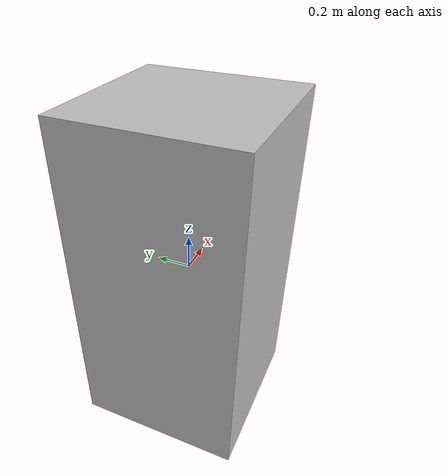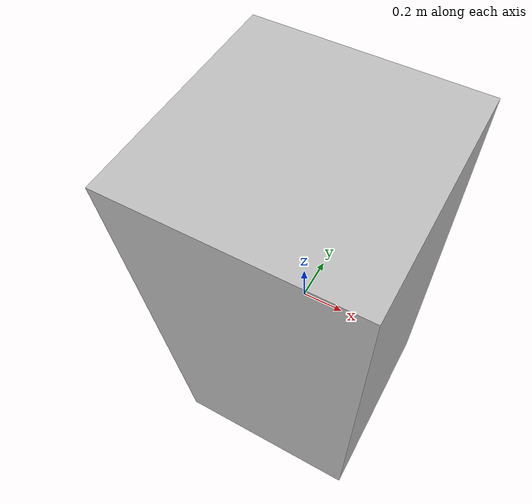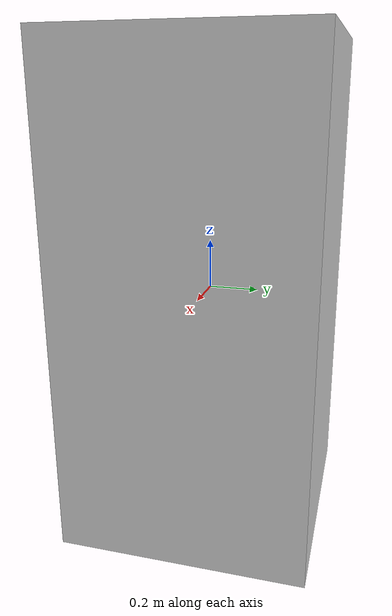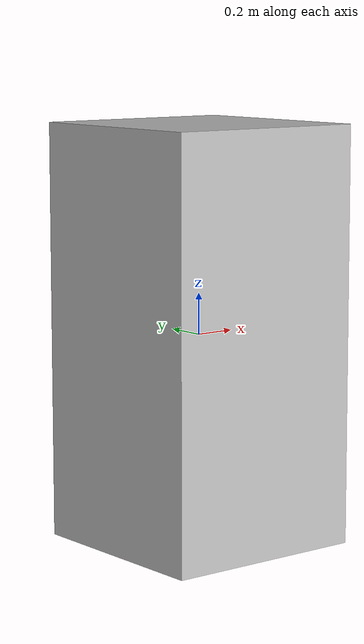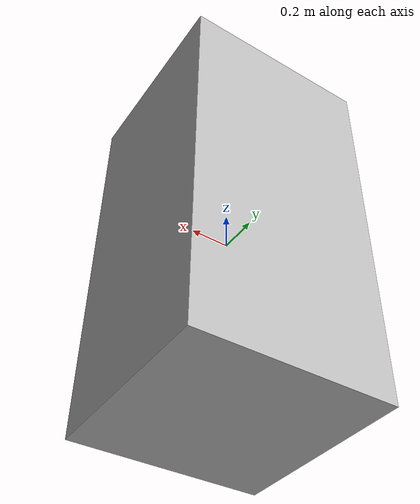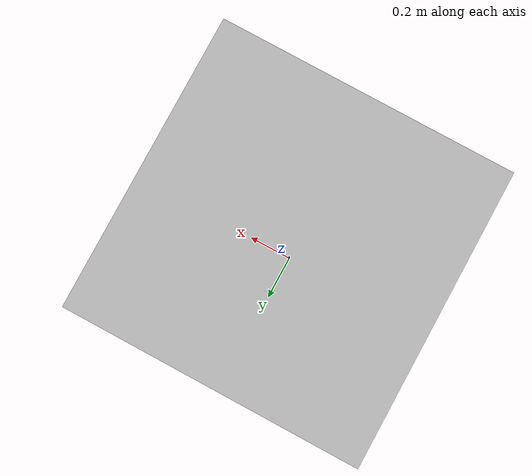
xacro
<?xml version="1.0" encoding="utf-8"?>

<robot
  name="jointbox_v1"
  xmlns:xacro="http://www.ros.org/wiki/xacro">

<xacro:property name="height" value="2" />
<xacro:property name="width" value="1" />
<xacro:property name="depth" value="1" />

  <link
    name="base_link">
    <inertial>
      <origin
        xyz="-0.0629929230197034 -0.101077489654191 -0.0741346542430378"
        rpy="0 0 0" />
      <mass
        value="0.0828799999999998" />
      <inertia
        ixx="0.000151718187490998"
        ixy="-3.99680555811009E-07"
        ixz="-3.9232079218258E-07"
        iyy="0.000109709295625709"
        iyz="3.73227652786365E-09"
        izz="0.000109709156883293" />
    </inertial>

    <visual>
      <origin
        xyz="0 0 0"
        rpy="0 0 0" />
      <geometry>
	<box size="${width} ${depth} ${height}"/>
      </geometry>
      <material
        name="">
        <color
          rgba="0.749019607843137 0.749019607843137 0.749019607843137 1" />
      </material>
    </visual>

    <collision>
      <origin
        xyz="0 0 0"
        rpy="0 0 0" />
      <geometry>
	<box size="${width} ${depth} ${height}"/>
      </geometry>
    </collision>
  </link>
</robot>
